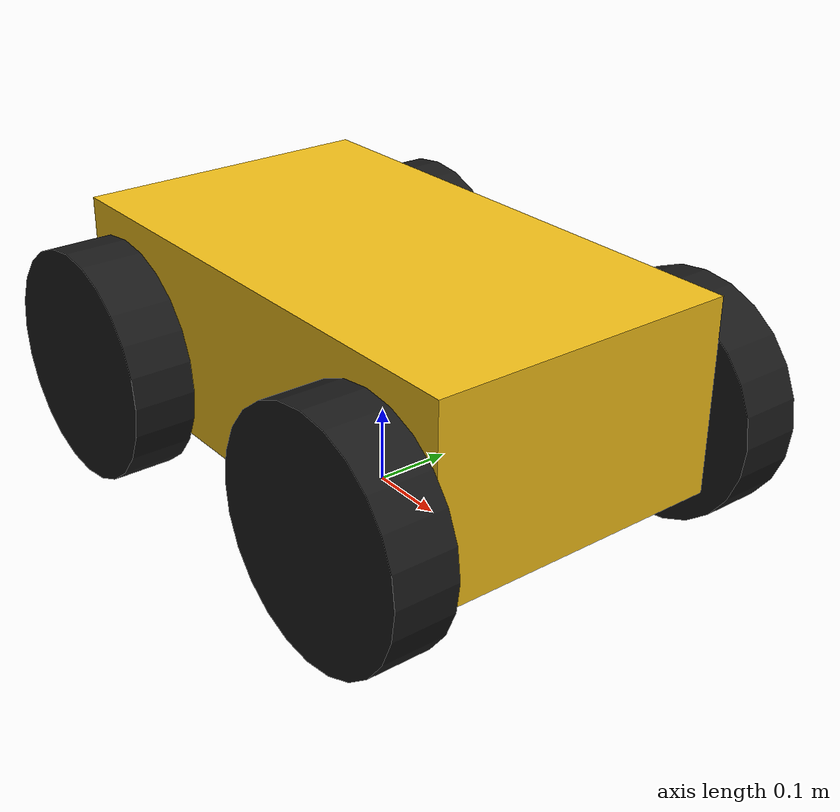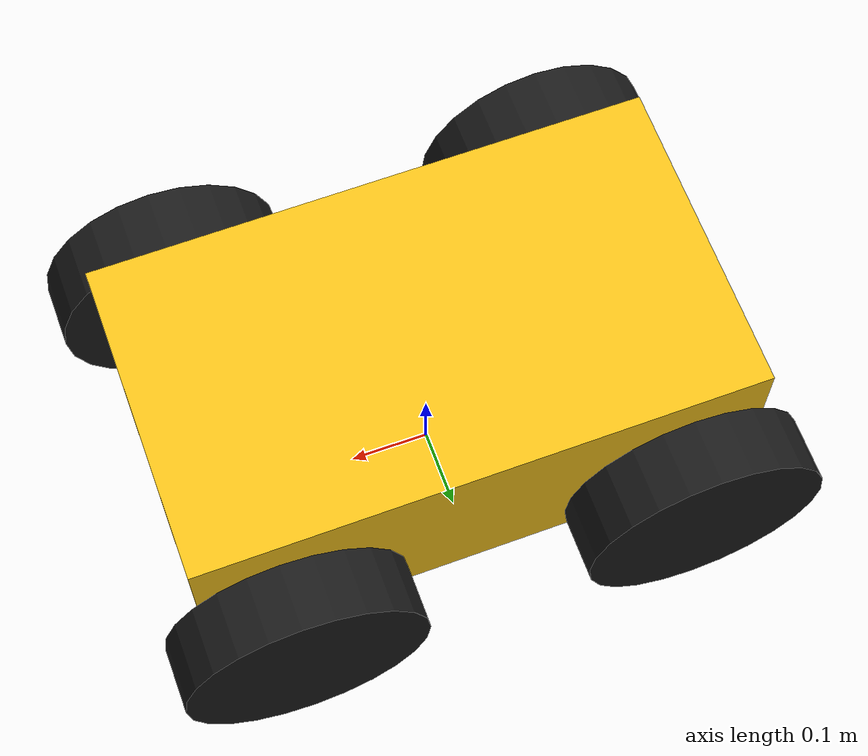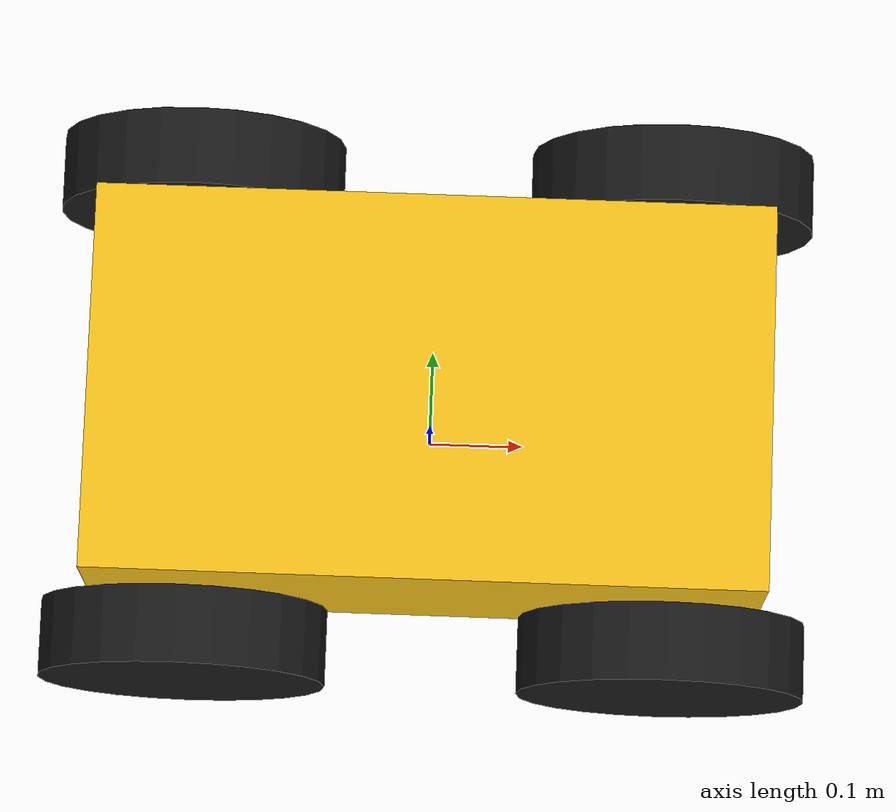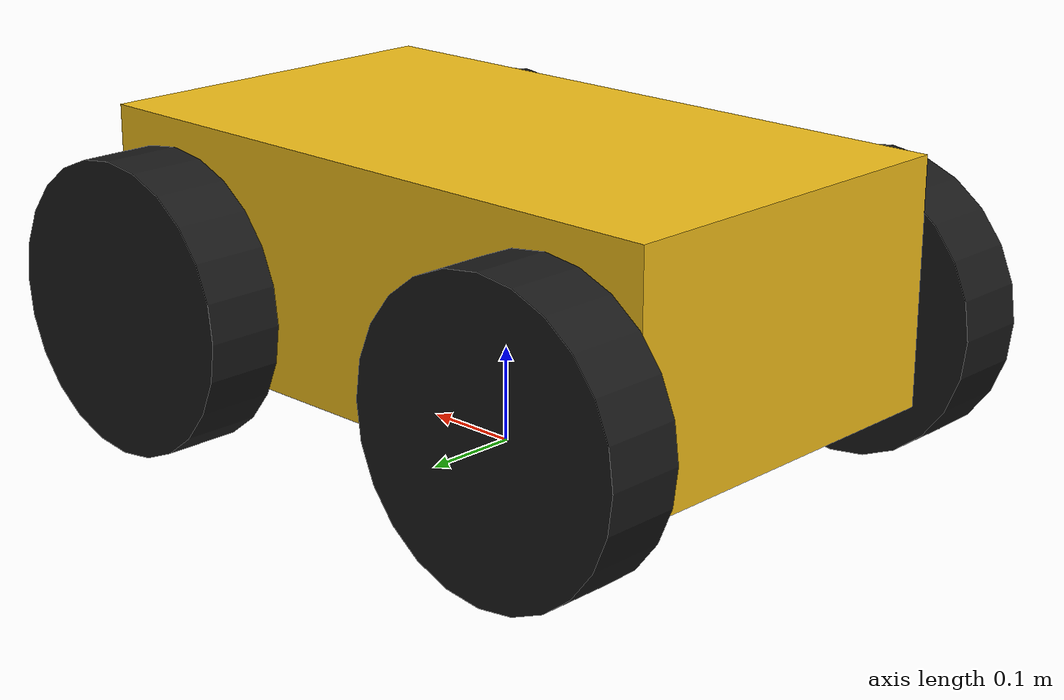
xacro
<?xml version="1.0"?>
<!-- PLACEHOLDER geometry/masses (SRS A-7). Replace with CAD-derived values. -->
<robot name="agronova" xmlns:xacro="http://www.ros.org/wiki/xacro">
  <xacro:arg name="sim" default="false"/>
  <xacro:property name="wheel_radius" value="0.15"/>
  <xacro:property name="wheel_width" value="0.08"/>
  <xacro:property name="track_width" value="0.50"/>
  <xacro:property name="wheel_base" value="0.50"/>
  <xacro:property name="body_l" value="0.70"/>
  <xacro:property name="body_w" value="0.40"/>
  <xacro:property name="body_h" value="0.25"/>
  <xacro:property name="body_mass" value="37.0"/>
  <xacro:property name="wheel_mass" value="2.0"/>

  <material name="body_yellow"><color rgba="0.95 0.75 0.1 1"/></material>
  <material name="tyre_black"><color rgba="0.1 0.1 0.1 1"/></material>
  <link name="base_footprint"/>
  <link name="base_link">
    <visual><geometry><box size="${body_l} ${body_w} ${body_h}"/></geometry><material name="body_yellow"/></visual>
    <collision><geometry><box size="${body_l} ${body_w} ${body_h}"/></geometry></collision>
    <inertial><mass value="${body_mass}"/>
      <inertia ixx="${body_mass*(body_w*body_w+body_h*body_h)/12}" ixy="0" ixz="0"
               iyy="${body_mass*(body_l*body_l+body_h*body_h)/12}" iyz="0"
               izz="${body_mass*(body_l*body_l+body_w*body_w)/12}"/></inertial>
  </link>
  <joint name="base_footprint_joint" type="fixed">
    <parent link="base_footprint"/><child link="base_link"/>
    <origin xyz="0 0 ${wheel_radius + 0.05}"/>
  </joint>

  <xacro:macro name="wheel" params="name x y">
    <link name="${name}_wheel">
      <visual><origin rpy="${pi/2} 0 0"/><geometry><cylinder radius="${wheel_radius}" length="${wheel_width}"/></geometry><material name="tyre_black"/></visual>
      <collision><origin rpy="${pi/2} 0 0"/><geometry><cylinder radius="${wheel_radius}" length="${wheel_width}"/></geometry></collision>
      <inertial><mass value="${wheel_mass}"/>
        <inertia ixx="${wheel_mass*(3*wheel_radius*wheel_radius+wheel_width*wheel_width)/12}" ixy="0" ixz="0"
                 iyy="${wheel_mass*wheel_radius*wheel_radius/2}" iyz="0"
                 izz="${wheel_mass*(3*wheel_radius*wheel_radius+wheel_width*wheel_width)/12}"/></inertial>
    </link>
    <joint name="${name}_wheel_joint" type="continuous">
      <parent link="base_link"/><child link="${name}_wheel"/>
      <origin xyz="${x} ${y} -0.05"/><axis xyz="0 1 0"/>
    </joint>
  </xacro:macro>
  <xacro:wheel name="front_left"  x="${wheel_base/2}"  y="${track_width/2}"/>
  <xacro:wheel name="front_right" x="${wheel_base/2}"  y="${-track_width/2}"/>
  <xacro:wheel name="rear_left"   x="${-wheel_base/2}" y="${track_width/2}"/>
  <xacro:wheel name="rear_right"  x="${-wheel_base/2}" y="${-track_width/2}"/>
  <xacro:if value="$(arg sim)"><xacro:include filename="$(find agronova_description)/urdf/agronova_gazebo.xacro"/></xacro:if>
</robot>
